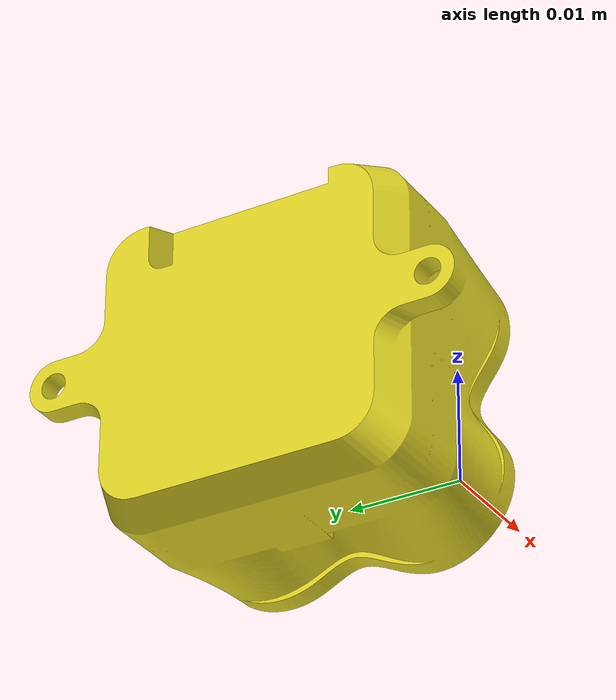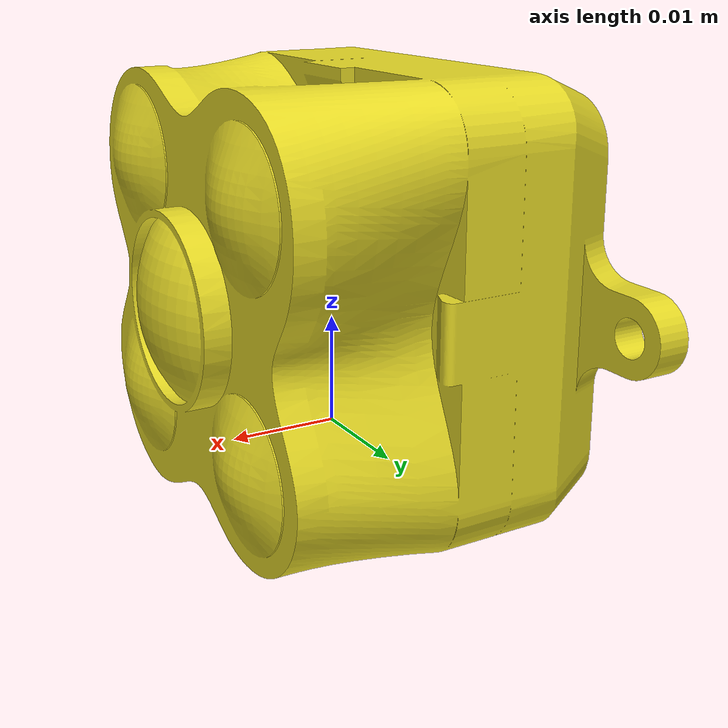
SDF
<?xml version="1.0" ?>
<sdf version="1.6">
  <model name="teraranger_evo_0">
    <pose>0 0 0.035 0 0 0</pose>
    <link name="laser_link_0">
      <inertial>
        <pose>0.01 0.025 0.025 0 0 0</pose>
        <mass>0.01</mass>
        <inertia>
          <ixx>4.15e-6</ixx>
          <ixy>0</ixy>
          <ixz>0</ixz>
          <iyy>2.407e-6</iyy>
          <iyz>0</iyz>
          <izz>2.407e-6</izz>
        </inertia>
      </inertial>
      <visual name="visual">
        <pose>0 0 0 0 1.58 0</pose>
        <geometry>
          <mesh>
            <uri>model://teraranger_description/meshes/TeraRangerEvo.stl</uri>
          </mesh>
        </geometry>
        <material>
          <script>
            <name>Gazebo/Yellow</name>
            <uri>file://media/materials/scripts/gazebo.material</uri>
          </script>
        </material>
      </visual>
      <sensor name="teraranger_evo_0" type="ray">
        <pose>0 0 0 0 0 0</pose>
        <visualize>true</visualize>
        <update_rate>100</update_rate>
        <ray>
          <scan>
            <horizontal>
              <samples>10</samples>
              <resolution>1</resolution>
              <min_angle>-0.01250</min_angle>
              <max_angle>0.01250</max_angle>
            </horizontal>
          </scan>
          <range>
            <min>0.40</min>
            <max>60.0</max>
            <resolution>0.05</resolution>
          </range>
        </ray>
        <plugin name="teraranger_node" filename="libgazebo_ros_range.so">
          <robotNamespace></robotNamespace>
          <topicName>gazebo/range_0</topicName>
          <frameName>laser_link_0</frameName>
          <updateRate>50</updateRate>
          <radiation>infrared</radiation>
          <fov>0.025</fov>
        </plugin>
      </sensor>
    </link>
  </model>
</sdf>
